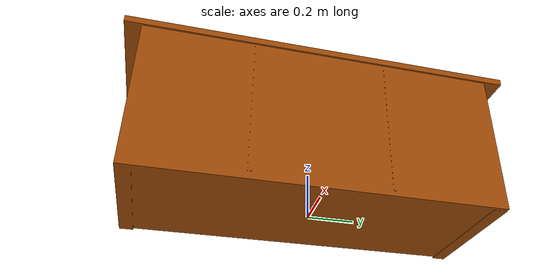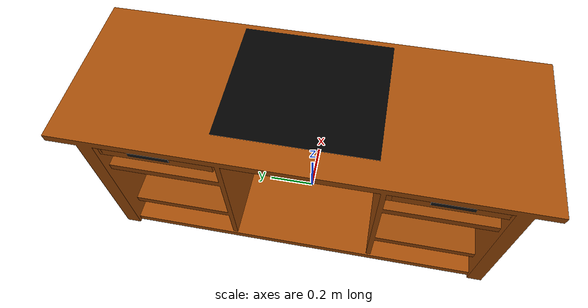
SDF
<?xml version="1.0" ?>
<sdf version="1.5">
  <model name="stove_table_model">
  <pose>0 0 0 0 0 0</pose>
    <link name="stove_table_link">
	  <pose>0 0 0 0 0 0</pose>
      <inertial>
        <mass>100.0</mass>
        <inertia>
          <ixx>1.0</ixx>
          <ixy>0</ixy>
          <ixz>0</ixz>
          <iyy>1.0</iyy>
          <iyz>0</iyz>
          <izz>1.0</izz>
        </inertia>
      </inertial>
      <collision name="stove_table_collision">
        <geometry>
          <mesh>
           <uri>model://stove_table/meshes/stove_table.dae</uri>
          </mesh>
        </geometry>
        <surface>
          <friction>
            <ode>
              <mu>1.0</mu>
              <mu2>1.0</mu2>
            </ode>
          </friction>
          <contact>
            <ode>
              <kp>10000000.0</kp>
              <kd>1.0</kd>
              <min_depth>0.001</min_depth>
              <max_vel>0.1</max_vel>
            </ode>
          </contact>
        </surface>
      </collision>
      <visual name="stove_table_visual">
        <geometry>
          <mesh>
           <uri>model://stove_table/meshes/stove_table.dae</uri>
          </mesh>
        </geometry>
      </visual>
    </link>

 <link name="stove_drawer_left_link">
	  <pose>-0.05 0.53 0.55 0 0 0</pose>
      <inertial>
        <mass>0.5</mass>
        <inertia>
          <ixx>0.001</ixx>
          <ixy>0</ixy>
          <ixz>0</ixz>
          <iyy>0.001</iyy>
          <iyz>0</iyz>
          <izz>0.001</izz>
        </inertia>
      </inertial>
      <collision name="stove_drawer_left_collision">
        <geometry>
          <mesh>
           <uri>model://stove_table/meshes/stove_drawer.dae</uri>
          </mesh>
        </geometry>
        <surface>
          <friction>
            <ode>
              <mu>1.0</mu>
              <mu2>1.0</mu2>
            </ode>
          </friction>
          <contact>
            <ode>
              <kp>10000000.0</kp>
              <kd>1.0</kd>
              <min_depth>0.001</min_depth>
              <max_vel>0.1</max_vel>
            </ode>
          </contact>
        </surface>
      </collision>
      <visual name="stove_drawer_left_visual">
        <geometry>
          <mesh>
           <uri>model://stove_table/meshes/stove_drawer.dae</uri>
          </mesh>
        </geometry>
      </visual>
    </link>

<link name="stove_drawer_right_link">
	  <pose>-0.05 -0.53 0.55 0 0 0</pose>
      <inertial>
        <mass>0.5</mass>
        <inertia>
          <ixx>0.001</ixx>
          <ixy>0</ixy>
          <ixz>0</ixz>
          <iyy>0.001</iyy>
          <iyz>0</iyz>
          <izz>0.001</izz>
        </inertia>
      </inertial>
      <collision name="stove_drawer_right_collision">
        <geometry>
          <mesh>
           <uri>model://stove_table/meshes/stove_drawer.dae</uri>
          </mesh>
        </geometry>
        <surface>
          <friction>
            <ode>
              <mu>1.0</mu>
              <mu2>1.0</mu2>
            </ode>
          </friction>
          <contact>
            <ode>
              <kp>10000000.0</kp>
              <kd>1.0</kd>
              <min_depth>0.001</min_depth>
              <max_vel>0.1</max_vel>
            </ode>
          </contact>
        </surface>
      </collision>
      <visual name="stove_drawer_right_visual">
        <geometry>
          <mesh>
           <uri>model://stove_table/meshes/stove_drawer.dae</uri>
          </mesh>
        </geometry>
      </visual>
    </link>

	<joint name="table_left_drawer_joint" type="prismatic">
		<child>stove_drawer_left_link</child>
		<parent>stove_table_link</parent>
		<axis>
			<limit>
				<lower>-0.5</lower>
				<upper>0.0</upper>
			</limit>
		<xyz>1 0 0</xyz>
		</axis>
	</joint>

	<joint name="table_right_drawer_joint" type="prismatic">
			<child>stove_drawer_right_link</child>
			<parent>stove_table_link</parent>
			<axis>
				<limit>
					<lower>-0.5</lower>
					<upper>0.0</upper>
				</limit>
			<xyz>1 0 0</xyz>
			</axis>
		</joint>

  </model>

</sdf>
